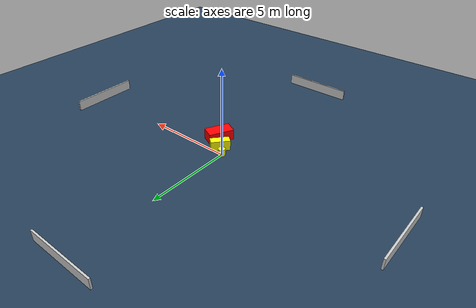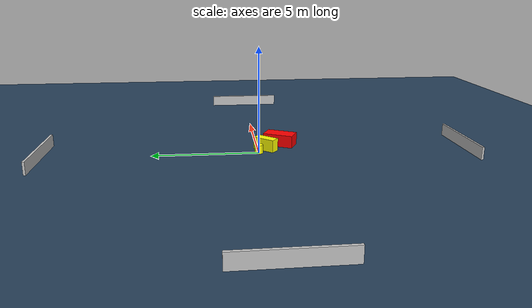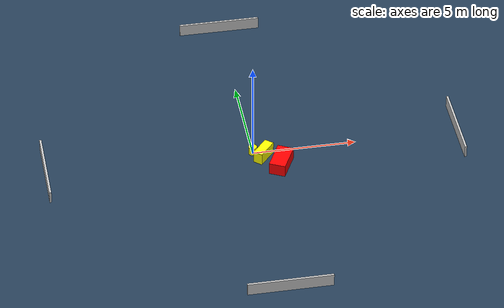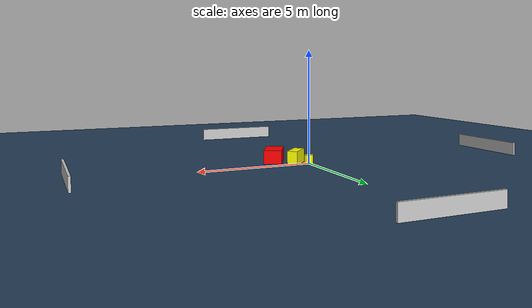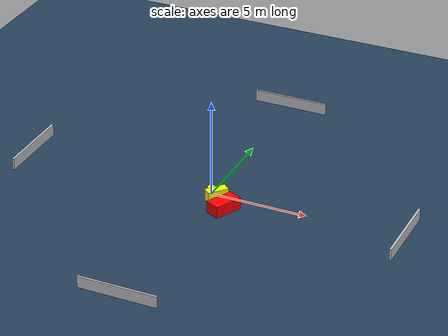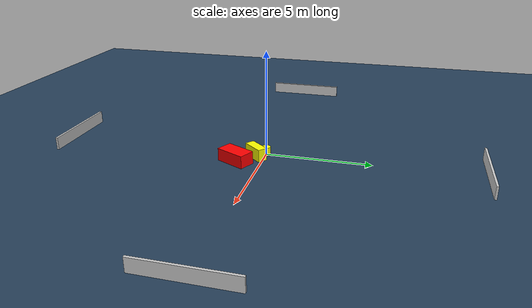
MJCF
<?xml version="1.0" ?>
<mujoco model="generated_environment">
  <option timestep="0.01" integrator="RK4" cone="elliptic"/>
  <default>
    <geom density="1"/>
  </default>
  <asset>
    <texture builtin="gradient" height="3072" name="skybox" rgb1="0.3 0.5 0.7" rgb2="0 0 0" type="skybox" width="512"/>
    <texture builtin="checker" height="300" name="groundplane" rgb1="0.2 0.3 0.4" rgb2="0.1 0.2 0.3" type="2d" width="300"/>
    <material name="groundplane" reflectance="0.2" texrepeat="5 5" texture="groundplane"/>
  </asset>
  <worldbody>
    <light dir="0 0 -1" directional="true" pos="0 0 1.5"/>
    <geom condim="3" friction="0.5 0.005 0.001" material="groundplane" name="floor" pos="0 0 0" size="0 0 0.05" type="plane"/>
    <body name="walls">
      <geom name="wall_1" condim="4" pos="-10.0 0.0 0.3" rgba="0.800000011920929 0.800000011920929 0.800000011920929 1.0" size="0.05 2.0 0.3" type="box"/>
      <geom name="wall_2" condim="4" pos="10.0 0.0 0.3" rgba="0.800000011920929 0.800000011920929 0.800000011920929 1.0" size="0.05 2.0 0.3" type="box"/>
      <geom name="wall_3" condim="4" pos="0.0 -10.0 0.3" rgba="0.800000011920929 0.800000011920929 0.800000011920929 1.0" size="2.0 0.05 0.3" type="box"/>
      <geom name="wall_4" condim="4" pos="0.0 10.0 0.3" rgba="0.800000011920929 0.800000011920929 0.800000011920929 1.0" size="2.0 0.05 0.3" type="box"/>
    </body>
    <body name="robot">
      <joint name="joint_x" type="slide" pos="0 0 0" axis="1 0 0"/>
      <joint name="joint_y" type="slide" pos="0 0 0" axis="0 1 0"/>
      <geom name="robot" type="cylinder" pos="0.0 0.0 0.2" size="0.2 0.2 0.0" mass="5.0" friction="1.0 0.005 0.0001" condim="4" rgba="1.0 1.0 0.0 1.0"/>
    </body>
    <body name="obstacle_1_movable">
      <geom name="obstacle_1_movable" condim="4" pos="0.4537041818426724 -0.3827950704987207 0.3" euler="0 0 139.5415222279913" friction="0.0 0.005 0.001" rgba="1.0 1.0 0.0 1.0" size="0.22773323903289072 0.5438466031923778 0.3" type="box" mass="0.1"/>
      <joint type="free"/>
    </body>
    <body name="obstacle_2_static">
      <geom name="obstacle_2_static" condim="4" pos="1.1814597316356439 -1.170128371338072 0.3" euler="0 0 243.4050073596144" friction="0.0 0.005 0.001" rgba="1.0 0.0 0.0 1.0" size="0.7363962461259237 0.3943540847263275 0.3" type="box"/>
    </body>
  </worldbody>
  <actuator>
    <motor name="actuator_x" joint="joint_x" gear="1" ctrlrange="-1 1"/>
    <motor name="actuator_y" joint="joint_y" gear="1" ctrlrange="-1 1"/>
  </actuator>
</mujoco>
